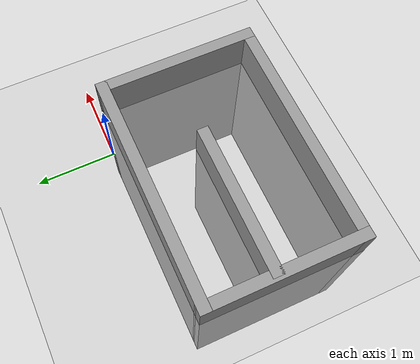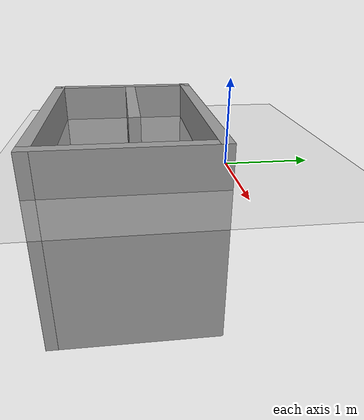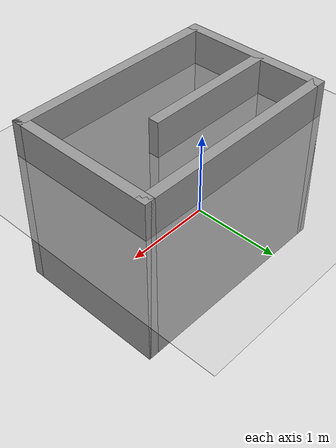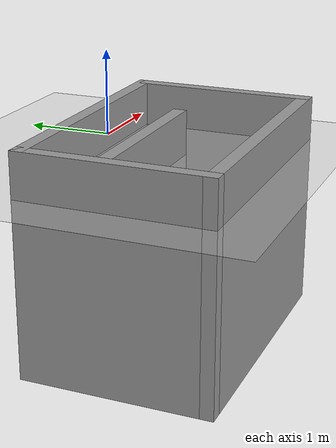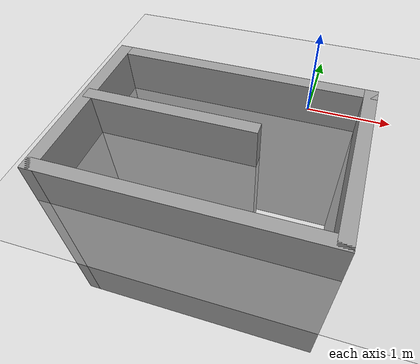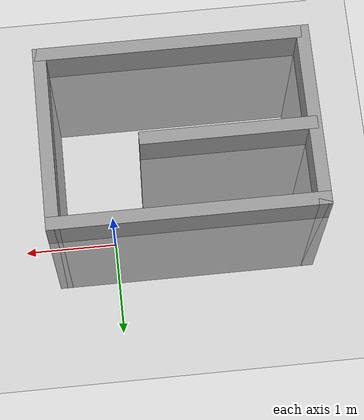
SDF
<sdf version="1.7">
 <world name="default">
  <model name="ground_plane">
   <static>1</static>
   <link name="link">
    <collision name="collision">
     <geometry><plane><normal>0 0 1</normal><size>100 100</size></plane></geometry>
     <surface>
      <contact><collide_bitmask>65535</collide_bitmask></contact>
      <friction><ode><mu>100</mu><mu2>50</mu2></ode></friction>
     </surface>
    </collision>
    <visual name="visual">
     <cast_shadows>0</cast_shadows>
     <geometry><plane><normal>0 0 1</normal><size>100 100</size></plane></geometry>
     <material>
      <script><uri>file://media/materials/scripts/gazebo.material</uri><name>Gazebo/Grey</name></script>
     </material>
    </visual>
   </link>
  </model>
  <light name="sun" type="directional">
   <pose>0 0 10 0 -0 0</pose>
   <diffuse>0.8 0.8 0.8 1</diffuse>
   <specular>0.2 0.2 0.2 1</specular>
   <attenuation>
    <range>1000</range>
    <constant>0.9</constant>
    <linear>0.01</linear>
    <quadratic>0.001</quadratic>
   </attenuation>
   <direction>-0.5 0.1 -0.9</direction>
   <spot><inner_angle>0</inner_angle><outer_angle>0</outer_angle><falloff>0</falloff></spot>
  </light>
  <scene><shadows>0</shadows><ambient>0.4 0.4 0.4 1</ambient><background>0.7 0.7 0.7 1</background></scene>
  <physics type="ode">
   <real_time_update_rate>1000</real_time_update_rate>
   <max_step_size>0.001</max_step_size>
   <real_time_factor>1</real_time_factor>
   <ode>
    <solver>
     <type>quick</type>
     <iters>150</iters>
     <precon_iters>0</precon_iters>
     <sor>1.4</sor>
     <use_dynamic_moi_rescaling>1</use_dynamic_moi_rescaling>
    </solver>
    <constraints>
     <cfm>1e-05</cfm>
     <erp>0.2</erp>
     <contact_max_correcting_vel>2000</contact_max_correcting_vel>
     <contact_surface_layer>0.01</contact_surface_layer>
    </constraints>
   </ode>
  </physics>
  <gravity>0 0 -9.8</gravity>
  <magnetic_field>6e-06 2.3e-05 -4.2e-05</magnetic_field>
  <atmosphere type="adiabatic"/>
  <audio><device>default</device></audio>
  <spherical_coordinates>
   <surface_model>EARTH_WGS84</surface_model>
   <latitude_deg>0</latitude_deg>
   <longitude_deg>0</longitude_deg>
   <elevation>0</elevation>
   <heading_deg>0</heading_deg>
  </spherical_coordinates>
  <model name="course1">
   <link name="Wall_0">
    <pose>-1.5 0 -2 0 -0 1.5708</pose>
    <inertial>
     <mass>1</mass>
     <inertia><ixx>1</ixx><ixy>0</ixy><ixz>0</ixz><iyy>1</iyy><iyz>0</iyz><izz>1</izz></inertia>
    </inertial>
    <visual name="Wall_0_Visual">
     <pose>0 0 1.25 0 -0 0</pose>
     <geometry><box><size>2.15 0.15 2.5</size></box></geometry>
     <material>
      <script><uri>file://media/materials/scripts/gazebo.material</uri><name>Gazebo/Grey</name></script>
      <ambient>1 1 1 1</ambient>
      <shader type="pixel"><normal_map>__default__</normal_map></shader>
      <diffuse>0.7 0.7 0.7 1</diffuse>
      <specular>0.01 0.01 0.01 1</specular>
      <emissive>0 0 0 1</emissive>
     </material>
     <meta><layer>0</layer></meta>
    </visual>
    <collision name="Wall_0_Collision">
     <pose>0 0 1.25 0 -0 0</pose>
     <geometry><box><size>2.15 0.15 2.5</size></box></geometry>
     <surface>
      <friction>
       <ode><mu>1</mu><mu2>1</mu2><fdir1>0 0 0</fdir1><slip1>0</slip1><slip2>0</slip2></ode>
       <torsional>
        <coefficient>1</coefficient>
        <patch_radius>0</patch_radius>
        <surface_radius>0</surface_radius>
        <use_patch_radius>1</use_patch_radius>
        <ode><slip>0</slip></ode>
       </torsional>
      </friction>
      <bounce><restitution_coefficient>0</restitution_coefficient><threshold>1e+06</threshold></bounce>
      <contact>
       <collide_without_contact>0</collide_without_contact>
       <collide_without_contact_bitmask>1</collide_without_contact_bitmask>
       <collide_bitmask>1</collide_bitmask>
       <ode>
        <soft_cfm>0</soft_cfm>
        <soft_erp>0.2</soft_erp>
        <kp>1e+13</kp>
        <kd>1</kd>
        <max_vel>0.01</max_vel>
        <min_depth>0</min_depth>
       </ode>
       <bullet>
        <split_impulse>1</split_impulse>
        <split_impulse_penetration_threshold>-0.01</split_impulse_penetration_threshold>
        <soft_cfm>0</soft_cfm>
        <soft_erp>0.2</soft_erp>
        <kp>1e+13</kp>
        <kd>1</kd>
       </bullet>
      </contact>
     </surface>
    </collision>
   </link>
   <link name="Wall_1">
    <pose>0 1 -2 0 -0 0</pose>
    <inertial>
     <mass>1</mass>
     <inertia><ixx>1</ixx><ixy>0</ixy><ixz>0</ixz><iyy>1</iyy><iyz>0</iyz><izz>1</izz></inertia>
    </inertial>
    <visual name="Wall_1_Visual">
     <pose>0 0 1.25 0 -0 0</pose>
     <geometry><box><size>3.15 0.15 2.5</size></box></geometry>
     <material>
      <script><uri>file://media/materials/scripts/gazebo.material</uri><name>Gazebo/Grey</name></script>
      <ambient>1 1 1 1</ambient>
      <shader type="pixel"><normal_map>__default__</normal_map></shader>
      <diffuse>0.7 0.7 0.7 1</diffuse>
      <specular>0.01 0.01 0.01 1</specular>
      <emissive>0 0 0 1</emissive>
     </material>
     <meta><layer>0</layer></meta>
    </visual>
    <collision name="Wall_1_Collision">
     <pose>0 0 1.25 0 -0 0</pose>
     <geometry><box><size>3.15 0.15 2.5</size></box></geometry>
     <surface>
      <friction>
       <ode><mu>1</mu><mu2>1</mu2><fdir1>0 0 0</fdir1><slip1>0</slip1><slip2>0</slip2></ode>
       <torsional>
        <coefficient>1</coefficient>
        <patch_radius>0</patch_radius>
        <surface_radius>0</surface_radius>
        <use_patch_radius>1</use_patch_radius>
        <ode><slip>0</slip></ode>
       </torsional>
      </friction>
      <bounce><restitution_coefficient>0</restitution_coefficient><threshold>1e+06</threshold></bounce>
      <contact>
       <collide_without_contact>0</collide_without_contact>
       <collide_without_contact_bitmask>1</collide_without_contact_bitmask>
       <collide_bitmask>1</collide_bitmask>
       <ode>
        <soft_cfm>0</soft_cfm>
        <soft_erp>0.2</soft_erp>
        <kp>1e+13</kp>
        <kd>1</kd>
        <max_vel>0.01</max_vel>
        <min_depth>0</min_depth>
       </ode>
       <bullet>
        <split_impulse>1</split_impulse>
        <split_impulse_penetration_threshold>-0.01</split_impulse_penetration_threshold>
        <soft_cfm>0</soft_cfm>
        <soft_erp>0.2</soft_erp>
        <kp>1e+13</kp>
        <kd>1</kd>
       </bullet>
      </contact>
     </surface>
    </collision>
   </link>
   <link name="Wall_10">
    <pose>-0.531907 0.111636 -2 0 -0 0</pose>
    <inertial>
     <mass>1</mass>
     <inertia><ixx>1</ixx><ixy>0</ixy><ixz>0</ixz><iyy>1</iyy><iyz>0</iyz><izz>1</izz></inertia>
    </inertial>
    <visual name="Wall_10_Visual">
     <pose>0 0 1.25 0 -0 0</pose>
     <geometry><box><size>2 0.15 2.5</size></box></geometry>
     <material>
      <script><uri>file://media/materials/scripts/gazebo.material</uri><name>Gazebo/Grey</name></script>
      <ambient>1 1 1 1</ambient>
      <shader type="pixel"><normal_map>__default__</normal_map></shader>
      <diffuse>0.7 0.7 0.7 1</diffuse>
      <specular>0.01 0.01 0.01 1</specular>
      <emissive>0 0 0 1</emissive>
     </material>
     <meta><layer>0</layer></meta>
    </visual>
    <collision name="Wall_10_Collision">
     <pose>0 0 1.25 0 -0 0</pose>
     <geometry><box><size>2 0.15 2.5</size></box></geometry>
     <surface>
      <friction>
       <ode><mu>1</mu><mu2>1</mu2><fdir1>0 0 0</fdir1><slip1>0</slip1><slip2>0</slip2></ode>
       <torsional>
        <coefficient>1</coefficient>
        <patch_radius>0</patch_radius>
        <surface_radius>0</surface_radius>
        <use_patch_radius>1</use_patch_radius>
        <ode><slip>0</slip></ode>
       </torsional>
      </friction>
      <bounce><restitution_coefficient>0</restitution_coefficient><threshold>1e+06</threshold></bounce>
      <contact>
       <collide_without_contact>0</collide_without_contact>
       <collide_without_contact_bitmask>1</collide_without_contact_bitmask>
       <collide_bitmask>1</collide_bitmask>
       <ode>
        <soft_cfm>0</soft_cfm>
        <soft_erp>0.2</soft_erp>
        <kp>1e+13</kp>
        <kd>1</kd>
        <max_vel>0.01</max_vel>
        <min_depth>0</min_depth>
       </ode>
       <bullet>
        <split_impulse>1</split_impulse>
        <split_impulse_penetration_threshold>-0.01</split_impulse_penetration_threshold>
        <soft_cfm>0</soft_cfm>
        <soft_erp>0.2</soft_erp>
        <kp>1e+13</kp>
        <kd>1</kd>
       </bullet>
      </contact>
     </surface>
    </collision>
   </link>
   <link name="Wall_2">
    <pose>1.5 0 -2 0 0 -1.5708</pose>
    <inertial>
     <mass>1</mass>
     <inertia><ixx>1</ixx><ixy>0</ixy><ixz>0</ixz><iyy>1</iyy><iyz>0</iyz><izz>1</izz></inertia>
    </inertial>
    <visual name="Wall_2_Visual">
     <pose>0 0 1.25 0 -0 0</pose>
     <geometry><box><size>2.15 0.15 2.5</size></box></geometry>
     <material>
      <script><uri>file://media/materials/scripts/gazebo.material</uri><name>Gazebo/Grey</name></script>
      <ambient>1 1 1 1</ambient>
      <shader type="pixel"><normal_map>__default__</normal_map></shader>
      <diffuse>0.7 0.7 0.7 1</diffuse>
      <specular>0.01 0.01 0.01 1</specular>
      <emissive>0 0 0 1</emissive>
     </material>
     <meta><layer>0</layer></meta>
    </visual>
    <collision name="Wall_2_Collision">
     <pose>0 0 1.25 0 -0 0</pose>
     <geometry><box><size>2.15 0.15 2.5</size></box></geometry>
     <surface>
      <friction>
       <ode><mu>1</mu><mu2>1</mu2><fdir1>0 0 0</fdir1><slip1>0</slip1><slip2>0</slip2></ode>
       <torsional>
        <coefficient>1</coefficient>
        <patch_radius>0</patch_radius>
        <surface_radius>0</surface_radius>
        <use_patch_radius>1</use_patch_radius>
        <ode><slip>0</slip></ode>
       </torsional>
      </friction>
      <bounce><restitution_coefficient>0</restitution_coefficient><threshold>1e+06</threshold></bounce>
      <contact>
       <collide_without_contact>0</collide_without_contact>
       <collide_without_contact_bitmask>1</collide_without_contact_bitmask>
       <collide_bitmask>1</collide_bitmask>
       <ode>
        <soft_cfm>0</soft_cfm>
        <soft_erp>0.2</soft_erp>
        <kp>1e+13</kp>
        <kd>1</kd>
        <max_vel>0.01</max_vel>
        <min_depth>0</min_depth>
       </ode>
       <bullet>
        <split_impulse>1</split_impulse>
        <split_impulse_penetration_threshold>-0.01</split_impulse_penetration_threshold>
        <soft_cfm>0</soft_cfm>
        <soft_erp>0.2</soft_erp>
        <kp>1e+13</kp>
        <kd>1</kd>
       </bullet>
      </contact>
     </surface>
    </collision>
   </link>
   <link name="Wall_3">
    <pose>0 -1 -2 0 -0 3.14159</pose>
    <inertial>
     <mass>1</mass>
     <inertia><ixx>1</ixx><ixy>0</ixy><ixz>0</ixz><iyy>1</iyy><iyz>0</iyz><izz>1</izz></inertia>
    </inertial>
    <visual name="Wall_3_Visual">
     <pose>0 0 1.25 0 -0 0</pose>
     <geometry><box><size>3.15 0.15 2.5</size></box></geometry>
     <material>
      <script><uri>file://media/materials/scripts/gazebo.material</uri><name>Gazebo/Grey</name></script>
      <ambient>1 1 1 1</ambient>
      <shader type="pixel"><normal_map>__default__</normal_map></shader>
      <diffuse>0.7 0.7 0.7 1</diffuse>
      <specular>0.01 0.01 0.01 1</specular>
      <emissive>0 0 0 1</emissive>
     </material>
     <meta><layer>0</layer></meta>
    </visual>
    <collision name="Wall_3_Collision">
     <pose>0 0 1.25 0 -0 0</pose>
     <geometry><box><size>3.15 0.15 2.5</size></box></geometry>
     <surface>
      <friction>
       <ode><mu>1</mu><mu2>1</mu2><fdir1>0 0 0</fdir1><slip1>0</slip1><slip2>0</slip2></ode>
       <torsional>
        <coefficient>1</coefficient>
        <patch_radius>0</patch_radius>
        <surface_radius>0</surface_radius>
        <use_patch_radius>1</use_patch_radius>
        <ode><slip>0</slip></ode>
       </torsional>
      </friction>
      <bounce><restitution_coefficient>0</restitution_coefficient><threshold>1e+06</threshold></bounce>
      <contact>
       <collide_without_contact>0</collide_without_contact>
       <collide_without_contact_bitmask>1</collide_without_contact_bitmask>
       <collide_bitmask>1</collide_bitmask>
       <ode>
        <soft_cfm>0</soft_cfm>
        <soft_erp>0.2</soft_erp>
        <kp>1e+13</kp>
        <kd>1</kd>
        <max_vel>0.01</max_vel>
        <min_depth>0</min_depth>
       </ode>
       <bullet>
        <split_impulse>1</split_impulse>
        <split_impulse_penetration_threshold>-0.01</split_impulse_penetration_threshold>
        <soft_cfm>0</soft_cfm>
        <soft_erp>0.2</soft_erp>
        <kp>1e+13</kp>
        <kd>1</kd>
       </bullet>
      </contact>
     </surface>
    </collision>
   </link>
   <static>1</static>
   <pose>-0.83115 -1.1706 0 0 -0 0</pose>
  </model>
 </world>
</sdf>
